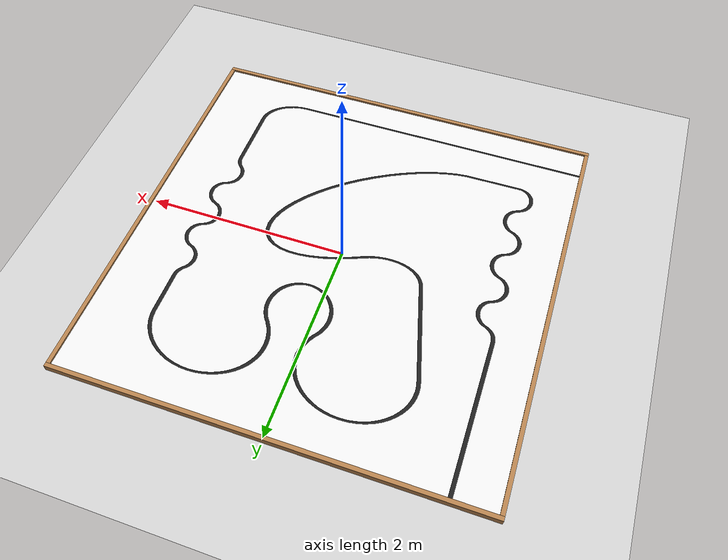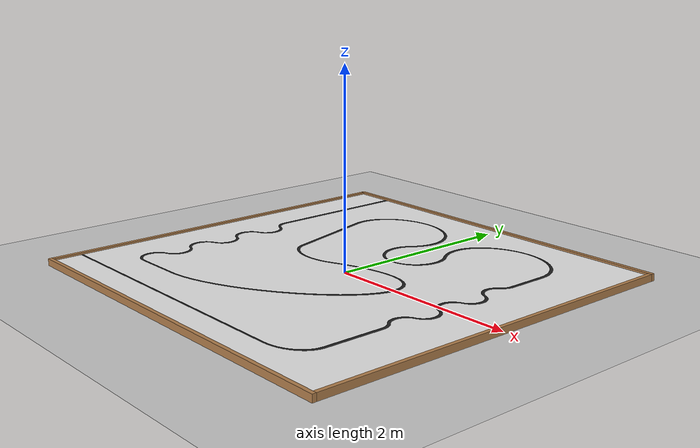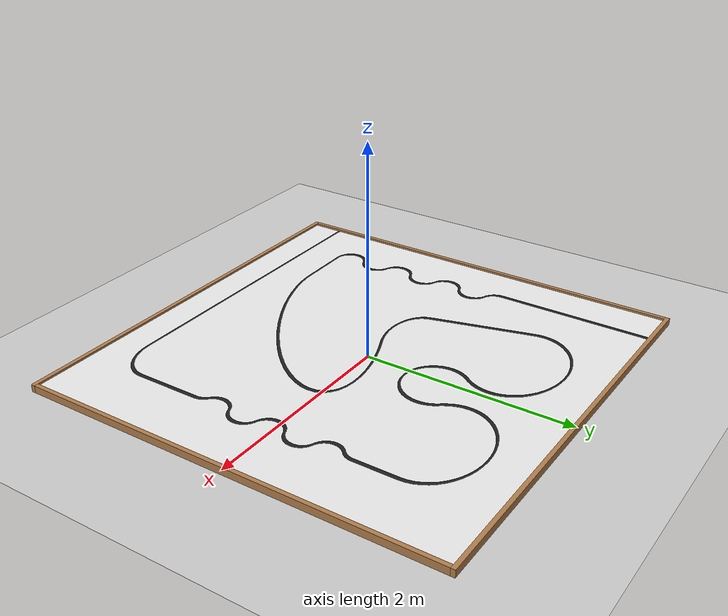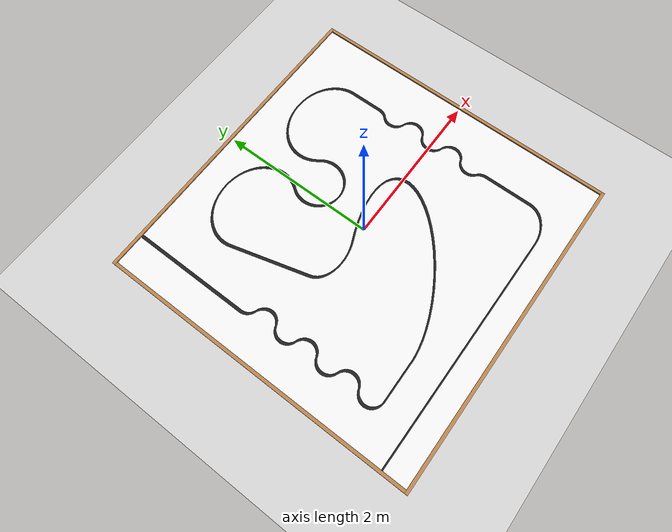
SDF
<?xml version="1.0" ?>

<!-- Simple world with vss field and ball
  Ref:
  https://github.com/osrf/gazebo/blob/gazebo11/worlds/robocup09_spl_field.world -->

<!-- Isometric view version -->

<sdf version="1.5">
    <world name="default">
        <!-- A global light source -->
        <include>
            <uri>model://sun</uri>
        </include>

        <!-- A ground plane -->
        <include>
            <uri>model://ground_plane</uri>
        </include>

        <include>
            <pose>0 0 0.025 0 0 0</pose>
            <uri>model://pista_pro</uri>
        </include>

        <!-- Configure camera angles for isometric view -->
        <gui fullscreen='0'>
            <camera name='user_camera'>
                <pose frame=''>0 0 0 0 0.565472 2.35619</pose>
                <view_controller>ortho</view_controller>
                <projection_type>orthographic</projection_type>
            </camera>
        </gui>
    </world>
</sdf>

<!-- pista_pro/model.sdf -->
<sdf version='1.7'>
  <model name='pista_pro'>
    <static>true</static>
    <link name='base_link'>
      <inertial>
        <mass>60</mass>
        <inertia>
          <ixx>80.0125</ixx>
          <ixy>0</ixy>
          <ixz>0</ixz>
          <iyy>80.0125</iyy>
          <iyz>0</iyz>
          <izz>160</izz>
        </inertia>
        <pose>0 0 0 0 -0 0</pose>
      </inertial>
      <pose>0 0 0 0 -0 0</pose>
      <gravity>1</gravity>
      <self_collide>0</self_collide>
      <kinematic>0</kinematic>
      <enable_wind>0</enable_wind>

      <visual name='base_link_visual'>
        <pose>0 0 0 0 -0 0</pose>
        <geometry>
          <box>
            <size>4 4 0.05</size>
          </box>
        </geometry>
        <material>
          <script>
            <uri>file://media/materials/scripts/gazebo.material</uri>
            <name>Gazebo/White</name>
          </script>
        </material>
        <transparency>0</transparency>
        <cast_shadows>1</cast_shadows>
      </visual>

      <visual name='base_link_track_visual'>
        <pose>0 0 0.02519 0 -0 0</pose>
        <geometry>
          <mesh>
            <scale>1 1 1</scale>
            <uri>model://pista_pro/meshes/track_visual.stl</uri>
          </mesh>
        </geometry>
        <material>
          <script>
            <uri>file://media/materials/scripts/gazebo.material</uri>
            <name>Gazebo/FlatBlack</name>
          </script>
        </material>
        <transparency>0</transparency>
        <cast_shadows>1</cast_shadows>
      </visual>

      <collision name='base_link_collision'>
        <laser_retro>0</laser_retro>
        <max_contacts>10</max_contacts>
        <pose>0 0 0 0 -0 0</pose>
        <geometry>
          <box>
            <size>4 4 0.05</size>
          </box>
        </geometry>
        <surface>
          <friction>
            <ode>
              <mu>1</mu>
              <mu2>1</mu2>
              <fdir1>0 0 0</fdir1>
              <slip1>0</slip1>
              <slip2>0</slip2>
            </ode>
            <torsional>
              <coefficient>1</coefficient>
              <patch_radius>0</patch_radius>
              <surface_radius>0</surface_radius>
              <use_patch_radius>1</use_patch_radius>
              <ode>
                <slip>0</slip>
              </ode>
            </torsional>
          </friction>
          <bounce>
            <restitution_coefficient>0</restitution_coefficient>
            <threshold>1e+06</threshold>
          </bounce>
          <contact>
            <collide_without_contact>0</collide_without_contact>
            <collide_without_contact_bitmask>1</collide_without_contact_bitmask>
            <collide_bitmask>1</collide_bitmask>
            <ode>
              <soft_cfm>0</soft_cfm>
              <soft_erp>0.2</soft_erp>
              <kp>1e+13</kp>
              <kd>1</kd>
              <max_vel>0.01</max_vel>
              <min_depth>0</min_depth>
            </ode>
            <bullet>
              <split_impulse>1</split_impulse>
              <split_impulse_penetration_threshold>-0.01</split_impulse_penetration_threshold>
              <soft_cfm>0</soft_cfm>
              <soft_erp>0.2</soft_erp>
              <kp>1e+13</kp>
              <kd>1</kd>
            </bullet>
          </contact>
        </surface>
      </collision>
    </link>

    <link name='wall_0'>
      <inertial>
        <mass>7.84</mass>
        <inertia>
          <ixx>10.4565</ixx>
          <ixy>0</ixy>
          <ixz>0</ixz>
          <iyy>0.00424667</iyy>
          <iyz>0</iyz>
          <izz>10.4544</izz>
        </inertia>
        <pose>0 0 0 0 -0 0</pose>
      </inertial>
      <pose>-2.02 0 0.01 0 -0 0</pose>
      <gravity>1</gravity>
      <self_collide>0</self_collide>
      <kinematic>0</kinematic>
      <enable_wind>0</enable_wind>
      <visual name='wall_0_visual'>
        <pose>0 0 0 0 -0 0</pose>
        <geometry>
          <box>
            <size>0.04 4 0.07</size>
          </box>
        </geometry>
        <material>
          <lighting>1</lighting>
          <script>
            <uri>file://media/materials/scripts/gazebo.material</uri>
            <name>Gazebo/Wood</name>
          </script>
        </material>
        <transparency>0</transparency>
        <cast_shadows>1</cast_shadows>
      </visual>
      <collision name='wall_0_collision'>
        <laser_retro>0</laser_retro>
        <max_contacts>10</max_contacts>
        <pose>0 0 0 0 -0 0</pose>
        <geometry>
          <box>
            <size>0.04 4 0.07</size>
          </box>
        </geometry>
        <surface>
          <friction>
            <ode>
              <mu>1</mu>
              <mu2>1</mu2>
              <fdir1>0 0 0</fdir1>
              <slip1>0</slip1>
              <slip2>0</slip2>
            </ode>
            <torsional>
              <coefficient>1</coefficient>
              <patch_radius>0</patch_radius>
              <surface_radius>0</surface_radius>
              <use_patch_radius>1</use_patch_radius>
              <ode>
                <slip>0</slip>
              </ode>
            </torsional>
          </friction>
          <bounce>
            <restitution_coefficient>0</restitution_coefficient>
            <threshold>1e+06</threshold>
          </bounce>
          <contact>
            <collide_without_contact>0</collide_without_contact>
            <collide_without_contact_bitmask>1</collide_without_contact_bitmask>
            <collide_bitmask>1</collide_bitmask>
            <ode>
              <soft_cfm>0</soft_cfm>
              <soft_erp>0.2</soft_erp>
              <kp>1e+13</kp>
              <kd>1</kd>
              <max_vel>0.01</max_vel>
              <min_depth>0</min_depth>
            </ode>
            <bullet>
              <split_impulse>1</split_impulse>
              <split_impulse_penetration_threshold>-0.01</split_impulse_penetration_threshold>
              <soft_cfm>0</soft_cfm>
              <soft_erp>0.2</soft_erp>
              <kp>1e+13</kp>
              <kd>1</kd>
            </bullet>
          </contact>
        </surface>
      </collision>
    </link>

    <link name='wall_1'>
      <inertial>
        <mass>7.84</mass>
        <inertia>
          <ixx>10.4565</ixx>
          <ixy>0</ixy>
          <ixz>0</ixz>
          <iyy>0.00424667</iyy>
          <iyz>0</iyz>
          <izz>10.4544</izz>
        </inertia>
        <pose>0 0 0 0 -0 0</pose>
      </inertial>
      <pose>2.02 0 0.01 0 -0 0</pose>
      <gravity>1</gravity>
      <self_collide>0</self_collide>
      <kinematic>0</kinematic>
      <enable_wind>0</enable_wind>
      <visual name='wall_1_visual'>
        <pose>0 0 0 0 -0 0</pose>
        <geometry>
          <box>
            <size>0.04 4 0.07</size>
          </box>
        </geometry>
        <material>
          <lighting>1</lighting>
          <script>
            <uri>file://media/materials/scripts/gazebo.material</uri>
            <name>Gazebo/Wood</name>
          </script>
        </material>
        <transparency>0</transparency>
        <cast_shadows>1</cast_shadows>
      </visual>
      <collision name='wall_1_collision'>
        <laser_retro>0</laser_retro>
        <max_contacts>10</max_contacts>
        <pose>0 0 0 0 -0 0</pose>
        <geometry>
          <box>
            <size>0.04 4 0.07</size>
          </box>
        </geometry>
        <surface>
          <friction>
            <ode>
              <mu>1</mu>
              <mu2>1</mu2>
              <fdir1>0 0 0</fdir1>
              <slip1>0</slip1>
              <slip2>0</slip2>
            </ode>
            <torsional>
              <coefficient>1</coefficient>
              <patch_radius>0</patch_radius>
              <surface_radius>0</surface_radius>
              <use_patch_radius>1</use_patch_radius>
              <ode>
                <slip>0</slip>
              </ode>
            </torsional>
          </friction>
          <bounce>
            <restitution_coefficient>0</restitution_coefficient>
            <threshold>1e+06</threshold>
          </bounce>
          <contact>
            <collide_without_contact>0</collide_without_contact>
            <collide_without_contact_bitmask>1</collide_without_contact_bitmask>
            <collide_bitmask>1</collide_bitmask>
            <ode>
              <soft_cfm>0</soft_cfm>
              <soft_erp>0.2</soft_erp>
              <kp>1e+13</kp>
              <kd>1</kd>
              <max_vel>0.01</max_vel>
              <min_depth>0</min_depth>
            </ode>
            <bullet>
              <split_impulse>1</split_impulse>
              <split_impulse_penetration_threshold>-0.01</split_impulse_penetration_threshold>
              <soft_cfm>0</soft_cfm>
              <soft_erp>0.2</soft_erp>
              <kp>1e+13</kp>
              <kd>1</kd>
            </bullet>
          </contact>
        </surface>
      </collision>
    </link>

    <link name='wall_2'>
      <inertial>
        <mass>7.9968</mass>
        <inertia>
          <ixx>0.0043316</ixx>
          <ixy>0</ixy>
          <ixz>0</ixz>
          <iyy>11.0964</iyy>
          <iyz>0</iyz>
          <izz>11.0942</izz>
        </inertia>
        <pose>0 0 0 0 -0 0</pose>
      </inertial>
      <pose>0 -2.02 0.01 0 -0 0</pose>
      <gravity>1</gravity>
      <self_collide>0</self_collide>
      <kinematic>0</kinematic>
      <enable_wind>0</enable_wind>
      <visual name='visual'>
        <pose>0 0 0 0 -0 0</pose>
        <geometry>
          <box>
            <size>4.08 0.04 0.07</size>
          </box>
        </geometry>
        <material>
          <lighting>1</lighting>
          <script>
            <uri>file://media/materials/scripts/gazebo.material</uri>
            <name>Gazebo/Wood</name>
          </script>
        </material>
        <transparency>0</transparency>
        <cast_shadows>1</cast_shadows>
      </visual>
      <collision name='wall_2_collision'>
        <laser_retro>0</laser_retro>
        <max_contacts>10</max_contacts>
        <pose>0 0 0 0 -0 0</pose>
        <geometry>
          <box>
            <size>4.08 0.04 0.07</size>
          </box>
        </geometry>
        <surface>
          <friction>
            <ode>
              <mu>1</mu>
              <mu2>1</mu2>
              <fdir1>0 0 0</fdir1>
              <slip1>0</slip1>
              <slip2>0</slip2>
            </ode>
            <torsional>
              <coefficient>1</coefficient>
              <patch_radius>0</patch_radius>
              <surface_radius>0</surface_radius>
              <use_patch_radius>1</use_patch_radius>
              <ode>
                <slip>0</slip>
              </ode>
            </torsional>
          </friction>
          <bounce>
            <restitution_coefficient>0</restitution_coefficient>
            <threshold>1e+06</threshold>
          </bounce>
          <contact>
            <collide_without_contact>0</collide_without_contact>
            <collide_without_contact_bitmask>1</collide_without_contact_bitmask>
            <collide_bitmask>1</collide_bitmask>
            <ode>
              <soft_cfm>0</soft_cfm>
              <soft_erp>0.2</soft_erp>
              <kp>1e+13</kp>
              <kd>1</kd>
              <max_vel>0.01</max_vel>
              <min_depth>0</min_depth>
            </ode>
            <bullet>
              <split_impulse>1</split_impulse>
              <split_impulse_penetration_threshold>-0.01</split_impulse_penetration_threshold>
              <soft_cfm>0</soft_cfm>
              <soft_erp>0.2</soft_erp>
              <kp>1e+13</kp>
              <kd>1</kd>
            </bullet>
          </contact>
        </surface>
      </collision>
    </link>

    <link name='wall_3'>
      <inertial>
        <mass>7.9968</mass>
        <inertia>
          <ixx>0.0043316</ixx>
          <ixy>0</ixy>
          <ixz>0</ixz>
          <iyy>11.0964</iyy>
          <iyz>0</iyz>
          <izz>11.0942</izz>
        </inertia>
        <pose>0 0 0 0 -0 0</pose>
      </inertial>
      <pose>0 2.02 0.01 0 -0 0</pose>
      <gravity>1</gravity>
      <self_collide>0</self_collide>
      <kinematic>0</kinematic>
      <enable_wind>0</enable_wind>
      <visual name='wall_3_visual'>
        <pose>0 0 0 0 -0 0</pose>
        <geometry>
          <box>
            <size>4.08 0.04 0.07</size>
          </box>
        </geometry>
        <material>
          <lighting>1</lighting>
          <script>
            <uri>file://media/materials/scripts/gazebo.material</uri>
            <name>Gazebo/Wood</name>
          </script>
        </material>
        <transparency>0</transparency>
        <cast_shadows>1</cast_shadows>
      </visual>
      <collision name='wall_3_collision'>
        <laser_retro>0</laser_retro>
        <max_contacts>10</max_contacts>
        <pose>0 0 0 0 -0 0</pose>
        <geometry>
          <box>
            <size>4.08 0.04 0.07</size>
          </box>
        </geometry>
        <surface>
          <friction>
            <ode>
              <mu>1</mu>
              <mu2>1</mu2>
              <fdir1>0 0 0</fdir1>
              <slip1>0</slip1>
              <slip2>0</slip2>
            </ode>
            <torsional>
              <coefficient>1</coefficient>
              <patch_radius>0</patch_radius>
              <surface_radius>0</surface_radius>
              <use_patch_radius>1</use_patch_radius>
              <ode>
                <slip>0</slip>
              </ode>
            </torsional>
          </friction>
          <bounce>
            <restitution_coefficient>0</restitution_coefficient>
            <threshold>1e+06</threshold>
          </bounce>
          <contact>
            <collide_without_contact>0</collide_without_contact>
            <collide_without_contact_bitmask>1</collide_without_contact_bitmask>
            <collide_bitmask>1</collide_bitmask>
            <ode>
              <soft_cfm>0</soft_cfm>
              <soft_erp>0.2</soft_erp>
              <kp>1e+13</kp>
              <kd>1</kd>
              <max_vel>0.01</max_vel>
              <min_depth>0</min_depth>
            </ode>
            <bullet>
              <split_impulse>1</split_impulse>
              <split_impulse_penetration_threshold>-0.01</split_impulse_penetration_threshold>
              <soft_cfm>0</soft_cfm>
              <soft_erp>0.2</soft_erp>
              <kp>1e+13</kp>
              <kd>1</kd>
            </bullet>
          </contact>
        </surface>
      </collision>
    </link>
    <static>0</static>
    <allow_auto_disable>1</allow_auto_disable>
  </model>
</sdf>
